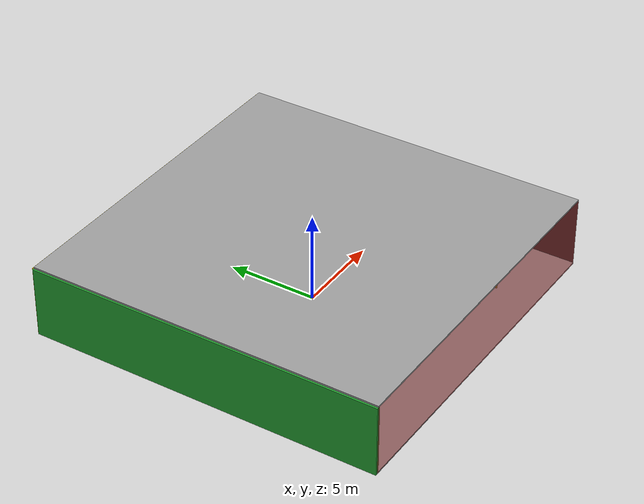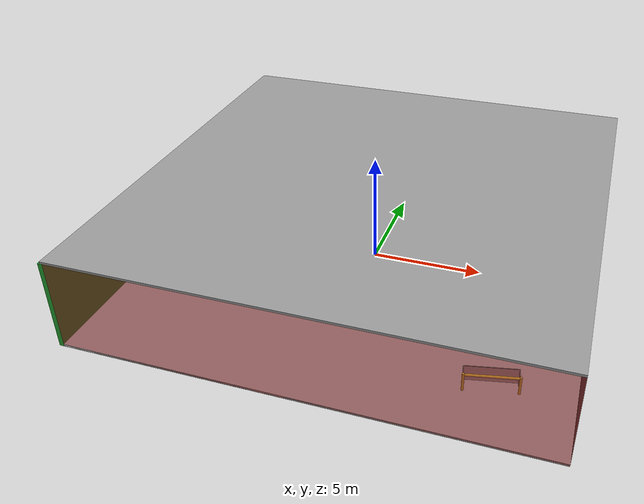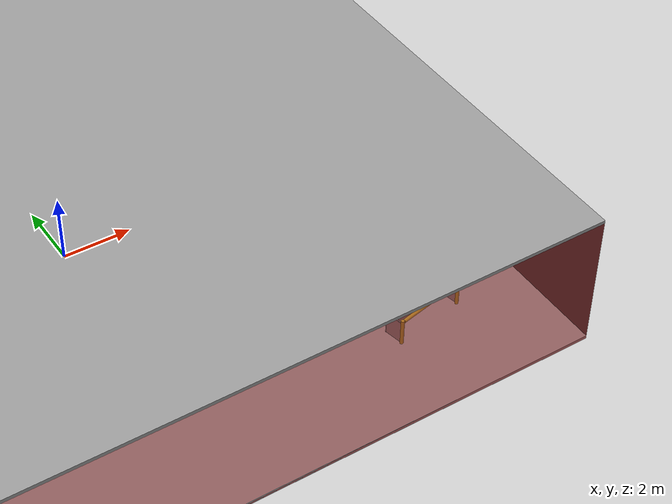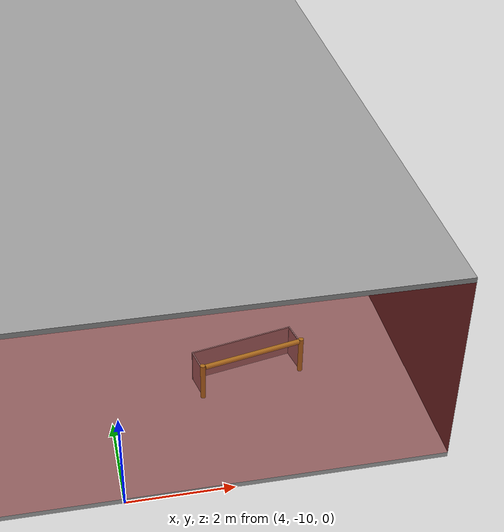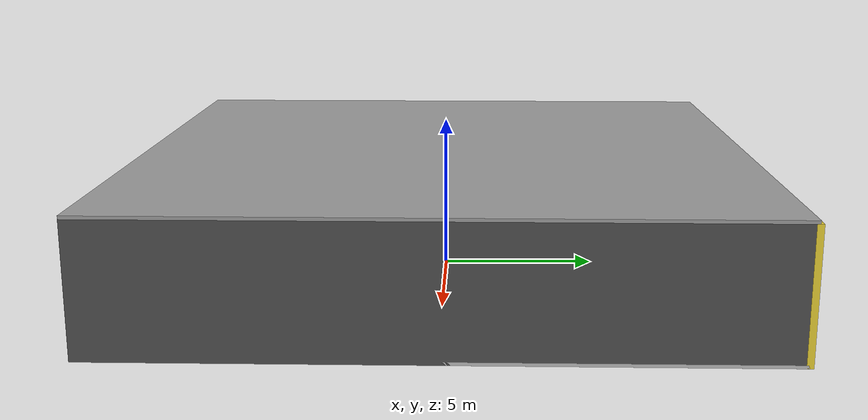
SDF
<sdf version="1.4">
 <world name="default">
  <physics type="ode">
   <max_step_size>0.001</max_step_size>
   <real_time_factor>1</real_time_factor>
   <real_time_update_rate>1000</real_time_update_rate>
   <gravity>0 0 -9.8</gravity>
  </physics>
  <scene><ambient>0.4 0.4 0.4 1</ambient><background>0.7 0.7 0.7 1</background><shadows>1</shadows></scene>
  <model name="Surrounding">
   <static>1</static>
   <link name="Ceiling">
    <collision name="Ceiling_Collision"><geometry><box><size>20 20 0.1</size></box></geometry></collision>
    <visual name="Ceiling_Visual">
     <geometry><box><size>20 20 0.1</size></box></geometry>
     <material>
      <script><uri>file://media/materials/scripts/gazebo.material</uri><name>Gazebo/Grey</name></script>
     </material>
    </visual>
    <pose>0 0 4.05 0 0 0</pose>
   </link>
   <link name="Wall_South">
    <collision name="Wall_South_Collision">
     <geometry><box><size>20 0 4</size></box></geometry>
     <pose>0 0 2 0 -0 0</pose>
    </collision>
    <visual name="Wall_South_Visual">
     <pose>0 0 2 0 -0 0</pose>
     <geometry><box><size>20 0 4</size></box></geometry>
     <material>
      <script><uri>file://media/materials/scripts/gazebo.material</uri><name>Gazebo/RedTransparent</name></script>
     </material>
    </visual>
    <velocity_decay><linear>0</linear><angular>0</angular></velocity_decay>
    <pose>0 -10 0 0 -0 0</pose>
   </link>
   <link name="Wall_East">
    <collision name="Wall_21_Collision">
     <geometry><box><size>20 0 4</size></box></geometry>
     <pose>0 0 2 0 -0 0</pose>
    </collision>
    <visual name="Wall_21_Visual">
     <pose>0 0 2 0 -0 0</pose>
     <geometry><box><size>20 0 4</size></box></geometry>
     <material>
      <script><uri>file://media/materials/scripts/gazebo.material</uri><name>Gazebo/DarkGrey</name></script>
     </material>
    </visual>
    <velocity_decay><linear>0</linear><angular>0</angular></velocity_decay>
    <pose>10 0 0 0 -0 1.5708</pose>
   </link>
   <link name="Wall_North">
    <collision name="Wall_22_Collision">
     <geometry><box><size>20 0.2 4</size></box></geometry>
     <pose>0 0 2 0 -0 0</pose>
    </collision>
    <visual name="Wall_22_Visual">
     <pose>0 0 2 0 -0 0</pose>
     <geometry><box><size>20 0.2 4</size></box></geometry>
     <material>
      <script><uri>file://media/materials/scripts/gazebo.material</uri><name>Gazebo/ZincYellow</name></script>
     </material>
    </visual>
    <velocity_decay><linear>0</linear><angular>0</angular></velocity_decay>
    <pose>0 10 0 0 -0 0</pose>
   </link>
   <link name="Wall_West">
    <collision name="Wall_23_Collision">
     <geometry><box><size>20 0.2 4</size></box></geometry>
     <pose>0 0 2 0 -0 0</pose>
    </collision>
    <visual name="Wall_23_Visual">
     <pose>0 0 2 0 -0 0</pose>
     <geometry><box><size>20 0.2 4</size></box></geometry>
     <material>
      <script><uri>file://media/materials/scripts/gazebo.material</uri><name>Gazebo/Green</name></script>
     </material>
    </visual>
    <velocity_decay><linear>0</linear><angular>0</angular></velocity_decay>
    <pose>-10 0 0 0 0 -1.5708</pose>
   </link>
   <link name="Ground_link">
    <collision name="collision">
     <pose>0 0 .05 0 -0 0</pose>
     <geometry><box><size>20 20 0.1</size></box></geometry>
    </collision>
    <visual name="visual">
     <pose>0 0 .05 0 -0 0</pose>
     <geometry><box><size>20 20 0.1</size></box></geometry>
     <material>
      <script><uri>file://media/materials/scripts/gazebo.material</uri><name>Gazebo/LightOn</name></script>
     </material>
    </visual>
   </link>
   <static>1</static>
  </model>
  <spherical_coordinates>
   <surface_model>EARTH_WGS84</surface_model>
   <latitude_deg>0</latitude_deg>
   <longitude_deg>0</longitude_deg>
   <elevation>0</elevation>
   <heading_deg>0</heading_deg>
  </spherical_coordinates>
  <light name="lightball_0" type="diffuse">
   <diffuse>0.8 0.8 0.8 1</diffuse>
   <specular>0.2 0.2 0.2 1</specular>
   <attenuation>
    <range>100</range>
    <constant>0.7</constant>
    <linear>0.01</linear>
    <quadratic>0.001</quadratic>
   </attenuation>
   <direction>-0.5 0.1 -0.9</direction>
   <pose>7.51385089756 4.69585063292 1.49217031705 0 0 0</pose>
  </light>
  <light name="lightball_1" type="diffuse">
   <diffuse>0.8 0.8 0.8 1</diffuse>
   <specular>0.2 0.2 0.2 1</specular>
   <attenuation>
    <range>100</range>
    <constant>0.7</constant>
    <linear>0.01</linear>
    <quadratic>0.001</quadratic>
   </attenuation>
   <direction>-0.5 0.1 -0.9</direction>
   <pose>-5.23635155261 6.62806598889 1.63716227401 0 0 0</pose>
  </light>
  <light name="lightball_2" type="diffuse">
   <diffuse>0.8 0.8 0.8 1</diffuse>
   <specular>0.2 0.2 0.2 1</specular>
   <attenuation>
    <range>100</range>
    <constant>0.7</constant>
    <linear>0.01</linear>
    <quadratic>0.001</quadratic>
   </attenuation>
   <direction>-0.5 0.1 -0.9</direction>
   <pose>-3.82598618905 5.58918722238 3.45666951256 0 0 0</pose>
  </light>
  <light name="lightball_3" type="diffuse">
   <diffuse>0.8 0.8 0.8 1</diffuse>
   <specular>0.2 0.2 0.2 1</specular>
   <attenuation>
    <range>100</range>
    <constant>0.7</constant>
    <linear>0.01</linear>
    <quadratic>0.001</quadratic>
   </attenuation>
   <direction>-0.5 0.1 -0.9</direction>
   <pose>7.85111757612 8.07471419146 1.44646269837 0 0 0</pose>
  </light>
  <light name="lightball_4" type="diffuse">
   <diffuse>0.8 0.8 0.8 1</diffuse>
   <specular>0.2 0.2 0.2 1</specular>
   <attenuation>
    <range>100</range>
    <constant>0.7</constant>
    <linear>0.01</linear>
    <quadratic>0.001</quadratic>
   </attenuation>
   <direction>-0.5 0.1 -0.9</direction>
   <pose>4.46568613366 -8.27733959704 3.0589891497 0 0 0</pose>
  </light>
  <light name="lightball_5" type="diffuse">
   <diffuse>0.8 0.8 0.8 1</diffuse>
   <specular>0.2 0.2 0.2 1</specular>
   <attenuation>
    <range>100</range>
    <constant>0.7</constant>
    <linear>0.01</linear>
    <quadratic>0.001</quadratic>
   </attenuation>
   <direction>-0.5 0.1 -0.9</direction>
   <pose>0.53313823585 -4.5902633166 3.4492385035 0 0 0</pose>
  </light>
  <light name="lightball_6" type="diffuse">
   <diffuse>0.8 0.8 0.8 1</diffuse>
   <specular>0.2 0.2 0.2 1</specular>
   <attenuation>
    <range>100</range>
    <constant>0.7</constant>
    <linear>0.01</linear>
    <quadratic>0.001</quadratic>
   </attenuation>
   <direction>-0.5 0.1 -0.9</direction>
   <pose>3.72838014424 3.60529201973 1.2075040776 0 0 0</pose>
  </light>
  <light name="lightball_7" type="diffuse">
   <diffuse>0.8 0.8 0.8 1</diffuse>
   <specular>0.2 0.2 0.2 1</specular>
   <attenuation>
    <range>100</range>
    <constant>0.7</constant>
    <linear>0.01</linear>
    <quadratic>0.001</quadratic>
   </attenuation>
   <direction>-0.5 0.1 -0.9</direction>
   <pose>3.4419904442 1.16853334534 0.735258041229 0 0 0</pose>
  </light>
  <light name="lightball_8" type="diffuse">
   <diffuse>0.8 0.8 0.8 1</diffuse>
   <specular>0.2 0.2 0.2 1</specular>
   <attenuation>
    <range>100</range>
    <constant>0.7</constant>
    <linear>0.01</linear>
    <quadratic>0.001</quadratic>
   </attenuation>
   <direction>-0.5 0.1 -0.9</direction>
   <pose>9.4128826816 -3.39456198075 0.790993719812 0 0 0</pose>
  </light>
  <light name="lightball_9" type="diffuse">
   <diffuse>0.8 0.8 0.8 1</diffuse>
   <specular>0.2 0.2 0.2 1</specular>
   <attenuation>
    <range>100</range>
    <constant>0.7</constant>
    <linear>0.01</linear>
    <quadratic>0.001</quadratic>
   </attenuation>
   <direction>-0.5 0.1 -0.9</direction>
   <pose>-9.62081779861 -0.106799351274 3.7601837894 0 0 0</pose>
  </light>
  <light name="lightball_10" type="diffuse">
   <diffuse>0.8 0.8 0.8 1</diffuse>
   <specular>0.2 0.2 0.2 1</specular>
   <attenuation>
    <range>100</range>
    <constant>0.7</constant>
    <linear>0.01</linear>
    <quadratic>0.001</quadratic>
   </attenuation>
   <direction>-0.5 0.1 -0.9</direction>
   <pose>9.64084500815 -4.24706198723 2.868097238 0 0 0</pose>
  </light>
  <light name="lightball_11" type="diffuse">
   <diffuse>0.8 0.8 0.8 1</diffuse>
   <specular>0.2 0.2 0.2 1</specular>
   <attenuation>
    <range>100</range>
    <constant>0.7</constant>
    <linear>0.01</linear>
    <quadratic>0.001</quadratic>
   </attenuation>
   <direction>-0.5 0.1 -0.9</direction>
   <pose>-2.48419134785 5.65615784393 1.47762191244 0 0 0</pose>
  </light>
  <light name="lightball_12" type="diffuse">
   <diffuse>0.8 0.8 0.8 1</diffuse>
   <specular>0.2 0.2 0.2 1</specular>
   <attenuation>
    <range>100</range>
    <constant>0.7</constant>
    <linear>0.01</linear>
    <quadratic>0.001</quadratic>
   </attenuation>
   <direction>-0.5 0.1 -0.9</direction>
   <pose>0.193293738935 -0.7718982441 2.00165290352 0 0 0</pose>
  </light>
  <light name="lightball_13" type="diffuse">
   <diffuse>0.8 0.8 0.8 1</diffuse>
   <specular>0.2 0.2 0.2 1</specular>
   <attenuation>
    <range>100</range>
    <constant>0.7</constant>
    <linear>0.01</linear>
    <quadratic>0.001</quadratic>
   </attenuation>
   <direction>-0.5 0.1 -0.9</direction>
   <pose>-0.647240049693 4.8493151758 2.8290397929 0 0 0</pose>
  </light>
  <include><uri>model://cabinet</uri><pose>-5.21083271262 1.3196752839 0 0 0 0.557780621971</pose></include>
  <include><uri>model://table</uri><pose>-2.04292037452 -4.13590922225 0 0 0 2.99518407148</pose></include>
  <include>
   <uri>model://construction_cone</uri>
   <pose>-2.0377105754 4.01333466842 0 0 0 1.76504832769</pose>
  </include>
  <include>
   <uri>model://robocup_3Dsim_goal</uri>
   <pose>6.85108090221 -7.44256593787 0 0 0 1.77392535651</pose>
  </include>
  <include><uri>model://cabinet</uri><pose>7.15801478741 -1.17651784664 0 0 0 1.51994732801</pose></include>
  <include><uri>model://table</uri><pose>6.80852218366 8.03723802052 0 0 0 0.491577221685</pose></include>
 </world>
</sdf>

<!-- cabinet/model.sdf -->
<sdf version="1.5">
  <model name="cabinet">
    <static>true</static>
    <link name="cabinet_bottom_plate">
      <inertial>
        <pose>0 0 -1 0 0 0</pose>
        <inertia>
          <ixx>2.050000</ixx>
          <ixy>0</ixy>
          <ixz>0</ixz>
          <iyy>2.050000</iyy>
          <iyz>0</iyz>
          <izz>2.050000</izz>
        </inertia>
        <mass>25.000000</mass>
      </inertial>
      <collision name="cabinet_bottom_plate_geom">
        <pose>0 0 0.010000 0 0 0</pose>
        <geometry>
          <box>
            <size>0.450000 0.450000 0.020000</size>
          </box>
        </geometry>
      </collision>
      <visual name="cabinet_bottom_plate_geom_visual">
        <pose>0 0 0.010000 0 0 0</pose>
        <geometry>
          <box>
            <size>0.450000 0.450000 0.020000</size>
          </box>
        </geometry>
        <material>
          <script>
            <uri>model://media/materials/scripts/gazebo.material</uri>
            <name>Gazebo/Wood</name>
          </script>
        </material>
      </visual>
      <collision name="cabinet_bottom_plate_geom_cabinet_back_plate">
        <pose>0.235000 0 0.510000 0 0 0</pose>
        <geometry>
          <box>
            <size>0.020000 0.450000 1.020000</size>
          </box>
        </geometry>
      </collision>
      <visual name="cabinet_bottom_plate_geom_cabinet_back_plate_visual">
        <pose>0.235000 0 0.510000 0 0 0</pose>
        <geometry>
          <box>
            <size>0.020000 0.450000 1.020000</size>
          </box>
        </geometry>
        <material>
          <script>
            <uri>model://media/materials/scripts/gazebo.material</uri>
            <name>Gazebo/Wood</name>
          </script>
        </material>
      </visual>
      <collision name="cabinet_bottom_plate_geom_cabinet_left_plate">
        <pose>0 0.235000 0.510000 0 0 0</pose>
        <geometry>
          <box>
            <size>0.450000 0.020000 1.020000</size>
          </box>
        </geometry>
      </collision>
      <visual name="cabinet_bottom_plate_geom_cabinet_left_plate_visual">
        <pose>0 0.235000 0.510000 0 0 0</pose>
        <geometry>
          <box>
            <size>0.450000 0.020000 1.020000</size>
          </box>
        </geometry>
        <material>
          <script>
            <uri>model://media/materials/scripts/gazebo.material</uri>
            <name>Gazebo/Wood</name>
          </script>
        </material>
      </visual>
      <collision name="cabinet_bottom_plate_geom_cabinet_middle_plate">
        <pose>0 0 0.510000 0 0 0</pose>
        <geometry>
          <box>
            <size>0.450000 0.450000 0.020000</size>
          </box>
        </geometry>
      </collision>
      <visual name="cabinet_bottom_plate_geom_cabinet_middle_plate_visual">
        <pose>0 0 0.510000 0 0 0</pose>
        <geometry>
          <box>
            <size>0.450000 0.450000 0.020000</size>
          </box>
        </geometry>
        <material>
          <script>
            <uri>model://media/materials/scripts/gazebo.material</uri>
            <name>Gazebo/Wood</name>
          </script>
        </material>
      </visual>
      <collision name="cabinet_bottom_plate_geom_cabinet_right_plate">
        <pose>0 -0.235000 0.510000 0 0 0</pose>
        <geometry>
          <box>
            <size>0.450000 0.020000 1.020000</size>
          </box>
        </geometry>
      </collision>
      <visual name="cabinet_bottom_plate_geom_cabinet_right_plate_visual">
        <pose>0 -0.235000 0.510000 0 0 0</pose>
        <geometry>
          <box>
            <size>0.450000 0.020000 1.020000</size>
          </box>
        </geometry>
        <material>
          <script>
            <uri>model://media/materials/scripts/gazebo.material</uri>
            <name>Gazebo/Wood</name>
          </script>
        </material>
      </visual>
      <collision name="cabinet_bottom_plate_geom_cabinet_top_plate">
        <pose>0 0 1.010000 0 0 0</pose>
        <geometry>
          <box>
            <size>0.450000 0.450000 0.020000</size>
          </box>
        </geometry>
      </collision>
      <visual name="cabinet_bottom_plate_geom_cabinet_top_plate_visual">
        <pose>0 0 1.010000 0 0 0</pose>
        <geometry>
          <box>
            <size>0.450000 0.450000 0.020000</size>
          </box>
        </geometry>
        <material>
          <script>
            <uri>model://media/materials/scripts/gazebo.material</uri>
            <name>Gazebo/Wood</name>
          </script>
        </material>
      </visual>
    </link>
  </model>
</sdf>

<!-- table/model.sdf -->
<sdf version="1.5">
  <model name="table">
    <static>true</static>
    <link name="link">
      <collision name="surface">
        <pose>0 0 1.0 0 0 0</pose>
        <geometry>
          <box>
            <size>1.5 0.8 0.03</size>
          </box>
        </geometry>
        <surface>
          <friction>
            <ode>
              <mu>0.6</mu>
              <mu2>0.6</mu2>
            </ode>
          </friction>
        </surface>
      </collision>
      <visual name="visual1">
        <pose>0 0 1.0 0 0 0</pose>
        <geometry>
          <box>
            <size>1.5 0.8 0.03</size>
          </box>
        </geometry>
        <material>
          <script>
            <uri>model://media/materials/scripts/gazebo.material</uri>
            <name>Gazebo/Wood</name>
          </script>
        </material>
      </visual>
      <collision name="front_left_leg">
        <pose>0.68 0.38 0.5 0 0 0</pose>
        <geometry>
          <cylinder>
            <radius>0.02</radius>
            <length>1.0</length>
          </cylinder>
        </geometry>
      </collision>
      <visual name="front_left_leg">
        <pose>0.68 0.38 0.5 0 0 0</pose>
        <geometry>
          <cylinder>
            <radius>0.02</radius>
            <length>1.0</length>
          </cylinder>
        </geometry>
        <material>
          <script>
            <uri>model://media/materials/scripts/gazebo.material</uri>
            <name>Gazebo/Grey</name>
          </script>
        </material>
      </visual>
      <collision name="front_right_leg">
        <pose>0.68 -0.38 0.5 0 0 0</pose>
        <geometry>
          <cylinder>
            <radius>0.02</radius>
            <length>1.0</length>
          </cylinder>
        </geometry>
      </collision>
      <visual name="front_right_leg">
        <pose>0.68 -0.38 0.5 0 0 0</pose>
        <geometry>
          <cylinder>
            <radius>0.02</radius>
            <length>1.0</length>
          </cylinder>
        </geometry>
        <material>
          <script>
            <uri>model://media/materials/scripts/gazebo.material</uri>
            <name>Gazebo/Grey</name>
          </script>
        </material>
      </visual>
      <collision name="back_right_leg">
        <pose>-0.68 -0.38 0.5 0 0 0</pose>
        <geometry>
          <cylinder>
            <radius>0.02</radius>
            <length>1.0</length>
          </cylinder>
        </geometry>
      </collision>
      <visual name="back_right_leg">
        <pose>-0.68 -0.38 0.5 0 0 0</pose>
        <geometry>
          <cylinder>
            <radius>0.02</radius>
            <length>1.0</length>
          </cylinder>
        </geometry>
        <material>
          <script>
            <uri>model://media/materials/scripts/gazebo.material</uri>
            <name>Gazebo/Grey</name>
          </script>
        </material>
      </visual>
      <collision name="back_left_leg">
        <pose>-0.68 0.38 0.5 0 0 0</pose>
        <geometry>
          <cylinder>
            <radius>0.02</radius>
            <length>1.0</length>
          </cylinder>
        </geometry>
      </collision>
      <visual name="back_left_leg">
        <pose>-0.68 0.38 0.5 0 0 0</pose>
        <geometry>
          <cylinder>
            <radius>0.02</radius>
            <length>1.0</length>
          </cylinder>
        </geometry>
        <material>
          <script>
            <uri>model://media/materials/scripts/gazebo.material</uri>
            <name>Gazebo/Grey</name>
          </script>
        </material>
      </visual>
    </link>
  </model>
</sdf>

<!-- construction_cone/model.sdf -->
<sdf version="1.5">
  <model name="Construction Cone">
    <link name="link">
      <collision name="collision">
        <geometry>
          <mesh>
            <scale>10 10 10</scale>
            <uri>file://isr-testbed/construction_cone/meshes/construction_cone.dae</uri>
          </mesh>
        </geometry>
      </collision>
      <visual name="visual">
        <geometry>
          <mesh>
            <scale>10 10 10</scale>
            <uri>file://isr-testbed/construction_cone/meshes/construction_cone.dae</uri>
          </mesh>
        </geometry>
      </visual>
    </link>
  </model>
</sdf>

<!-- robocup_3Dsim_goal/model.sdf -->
<sdf version="1.5">
  <model name="robocup_3d_goal">
    <static>true</static>
    <link name="left_post">
      <pose>0 1.05 0.45 0 0 0</pose>
      <collision name="collision">
        <geometry>
          <cylinder>
            <radius>0.05</radius>
            <length>0.9</length>
          </cylinder>
        </geometry>
      </collision>
      <visual name="visual">
        <geometry>
          <cylinder>
            <radius>0.05</radius>
            <length>0.9</length>
          </cylinder>
        </geometry>
        <material>
          <script>
            <uri>file://media/materials/scripts/gazebo.material</uri>
            <name>Gazebo/ZincYellow</name>
          </script>
        </material>
      </visual>
    </link>
    <link name="left_support_horiz_lower">
      <pose>0.30 1.05 0.01 0 0 0</pose>
      <collision name="collision">
        <geometry>
          <box>
            <size>0.50 0.02 0.02</size>
          </box>
        </geometry>
      </collision>
      <visual name="visual">
        <geometry>
          <box>
            <size>0.50 0.02 0.02</size>
          </box>
        </geometry>
        <material>
          <script>
            <uri>file://media/materials/scripts/gazebo.material</uri>
            <name>Gazebo/White</name>
          </script>
        </material>
      </visual>
    </link>
    <link name="left_support_horiz_upper">
      <pose>0.30 1.05 0.79 0 0 0</pose>
      <collision name="collision">
        <geometry>
          <box>
            <size>0.50 0.02 0.02</size>
          </box>
        </geometry>
      </collision>
      <visual name="visual">
        <geometry>
          <box>
            <size>0.50 0.02 0.02</size>
          </box>
        </geometry>
        <material>
          <script>
            <uri>file://media/materials/scripts/gazebo.material</uri>
            <name>Gazebo/White</name>
          </script>
        </material>
      </visual>
    </link>
    <link name="left_support_vertical">
      <pose>0.56 1.05 0.4 0 1.5708 0</pose>
      <collision name="collision">
        <geometry>
          <box>
            <size>0.80 0.02 0.02</size>
          </box>
        </geometry>
      </collision>
      <visual name="visual">
        <geometry>
          <box>
            <size>0.80 0.02 0.02</size>
          </box>
        </geometry>
        <material>
          <script>
            <uri>file://media/materials/scripts/gazebo.material</uri>
            <name>Gazebo/White</name>
          </script>
        </material>
      </visual>
    </link>
    <link name="right_support_horiz_lower">
      <pose>0.30 -1.05 0.01 0 0 0</pose>
      <collision name="collision">
        <geometry>
          <box>
            <size>0.50 0.02 0.02</size>
          </box>
        </geometry>
      </collision>
      <visual name="visual">
        <geometry>
          <box>
            <size>0.50 0.02 0.02</size>
          </box>
        </geometry>
        <material>
          <script>
            <uri>file://media/materials/scripts/gazebo.material</uri>
            <name>Gazebo/White</name>
          </script>
        </material>
      </visual>
    </link>
    <link name="right_support_horiz_upper">
      <pose>0.30 -1.05 0.79 0 0 0</pose>
      <collision name="collision">
        <geometry>
          <box>
            <size>0.50 0.02 0.02</size>
          </box>
        </geometry>
      </collision>
      <visual name="visual">
        <geometry>
          <box>
            <size>0.50 0.02 0.02</size>
          </box>
        </geometry>
        <material>
          <script>
            <uri>file://media/materials/scripts/gazebo.material</uri>
            <name>Gazebo/White</name>
          </script>
        </material>
      </visual>
    </link>
    <link name="right_support_vertical">
      <pose>0.56 -1.05 0.4 0 1.5708 0</pose>
      <collision name="collision">
        <geometry>
          <box>
            <size>0.80 0.02 0.02</size>
          </box>
        </geometry>
      </collision>
      <visual name="visual">
        <geometry>
          <box>
            <size>0.80 0.02 0.02</size>
          </box>
        </geometry>
        <material>
          <script>
            <uri>file://media/materials/scripts/gazebo.material</uri>
            <name>Gazebo/White</name>
          </script>
        </material>
      </visual>
    </link>
    <link name="center_support_horiz_lower">
      <pose>0.56 0 0.01 0 1.5708 0</pose>
      <collision name="collision">
        <geometry>
          <box>
            <size>0.02 2.08 0.02</size>
          </box>
        </geometry>
      </collision>
      <visual name="visual">
        <geometry>
          <box>
            <size>0.02 2.08 0.02</size>
          </box>
        </geometry>
        <material>
          <script>
            <uri>file://media/materials/scripts/gazebo.material</uri>
            <name>Gazebo/White</name>
          </script>
        </material>
      </visual>
    </link>
    <link name="center_support_horiz_upper">
      <pose>0.56 0 0.79 0 1.5708 0</pose>
      <collision name="collision">
        <geometry>
          <box>
            <size>0.02 2.08 0.02</size>
          </box>
        </geometry>
      </collision>
      <visual name="visual">
        <geometry>
          <box>
            <size>0.02 2.08 0.02</size>
          </box>
        </geometry>
        <material>
          <script>
            <uri>file://media/materials/scripts/gazebo.material</uri>
            <name>Gazebo/White</name>
          </script>
        </material>
      </visual>
    </link>
    <link name="right_post">
      <pose>0 -1.05 0.45 0 0 0</pose>
      <collision name="collision">
        <geometry>
          <cylinder>
            <radius>0.05</radius>
            <length>0.9</length>
          </cylinder>
        </geometry>
      </collision>
      <visual name="visual">
        <geometry>
          <cylinder>
            <radius>0.05</radius>
            <length>0.9</length>
          </cylinder>
        </geometry>
        <material>
          <script>
            <uri>file://media/materials/scripts/gazebo.material</uri>
            <name>Gazebo/ZincYellow</name>
          </script>
        </material>
      </visual>
    </link>
    <link name="crossbar">
      <pose>0 0 0.85 1.57 1.57 0</pose>
      <collision name="collision">
        <geometry>
          <cylinder>
            <radius>0.05</radius>
            <length>2.0</length>
          </cylinder>
        </geometry>
      </collision>
      <visual name="visual">
        <geometry>
          <cylinder>
            <radius>0.05</radius>
            <length>2.0</length>
          </cylinder>
        </geometry>
        <material>
          <script>
            <uri>file://media/materials/scripts/gazebo.material</uri>
            <name>Gazebo/ZincYellow</name>
          </script>
        </material>
      </visual>
    </link>
    <link name="center_net">
      <pose>0.56 0 0.40 0 0 0</pose>
      <collision name="collision">
        <geometry>
          <box>
            <size>0.01 2.1 0.80</size>
          </box>
        </geometry>
      </collision>
      <visual name="visual">
        <geometry>
          <box>
            <size>0.01 2.1 0.80</size>
          </box>
        </geometry>
        <material>
          <script>
            <uri>model://../model_source/models/robocup09_spl_field/materials/scripts/</uri>
            <uri>model://../model_source/models/robocup09_spl_field/materials/textures/</uri>
            <name>RoboCup/Net</name>
          </script>
        </material>
      </visual>
    </link>
    <link name="left_net">
      <pose>0.30 1.05 0.40 0 0 0</pose>
      <collision name="collision">
        <geometry>
          <box>
            <size>0.50 0.01 0.76</size>
          </box>
        </geometry>
      </collision>
      <visual name="visual">
        <geometry>
          <box>
            <size>0.50 0.01 0.76</size>
          </box>
        </geometry>
        <material>
          <script>
            <uri>model://../model_source/models/robocup09_spl_field/materials/scripts/</uri>
            <uri>model://../model_source/models/robocup09_spl_field/materials/textures/</uri>
            <name>RoboCup/Net</name>
          </script>
        </material>
      </visual>
    </link>
    <link name="right_net">
      <pose>0.30 -1.05 0.40 0 0 0</pose>
      <collision name="collision">
        <geometry>
          <box>
            <size>0.50 0.01 0.76</size>
          </box>
        </geometry>
      </collision>
      <visual name="visual">
        <geometry>
          <box>
            <size>0.50 0.01 0.76</size>
          </box>
        </geometry>
        <material>
          <script>
            <uri>model://../model_source/models/robocup09_spl_field/materials/scripts/</uri>
            <uri>model://../model_source/models/robocup09_spl_field/materials/textures/</uri>
            <name>RoboCup/Net</name>
          </script>
        </material>
      </visual>
    </link>
  </model>
</sdf>
